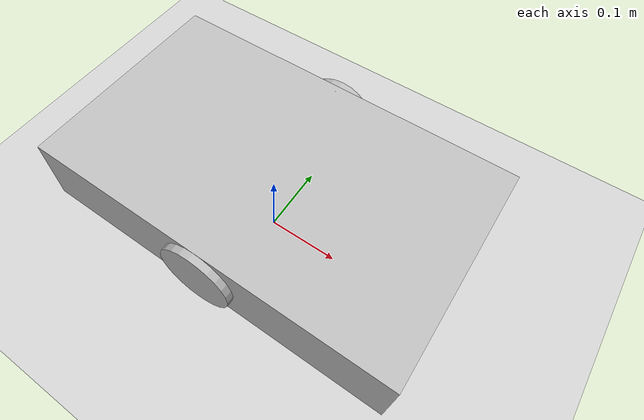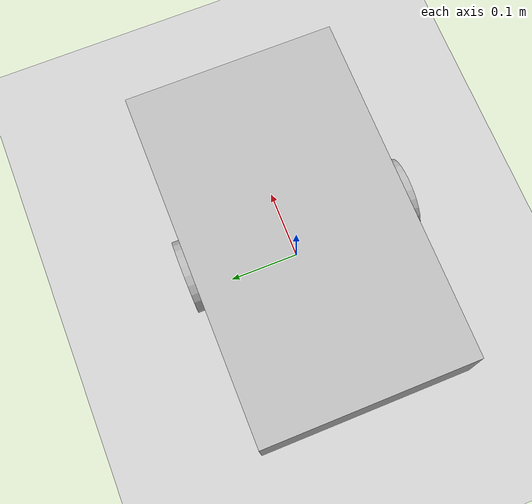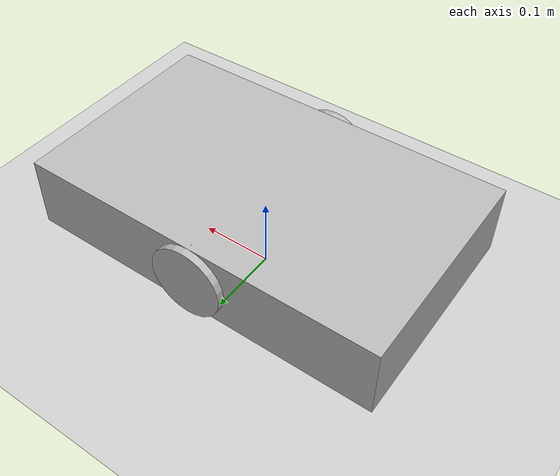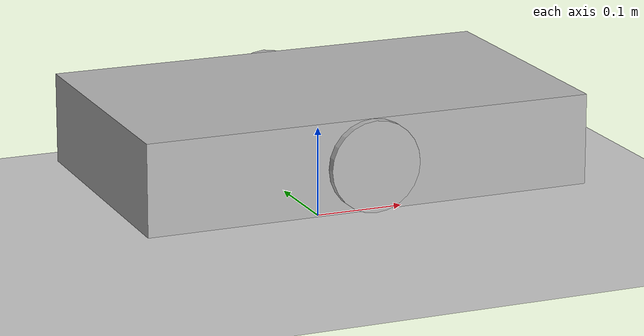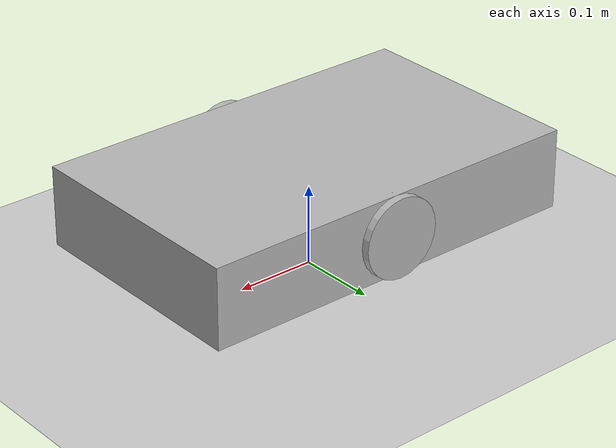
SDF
<?xml version="1.0" ?>
<sdf version="1.7">
  <world name="default">

    <physics name="1ms" type="ignored">
      <max_step_size>0.001</max_step_size>
      <real_time_factor>1.0</real_time_factor>
    </physics>

    <!-- LIGHT -->
    <light name="sun" type="directional">
      <direction>-0.5 0.5 -1</direction>
    </light>

    <!-- GROUND -->
    <model name="ground_plane">
      <static>true</static>
      <link name="link">
        <collision name="collision">
          <geometry>
            <plane>
              <normal>0 0 1</normal>
              <size>50 50</size>
            </plane>
          </geometry>
        </collision>
        <visual name="visual">
          <geometry>
            <plane>
              <normal>0 0 1</normal>
              <size>50 50</size>
            </plane>
          </geometry>
        </visual>
      </link>
    </model>

    <!-- ROBOT -->
    <model name="robot">
      <pose>0 0 0.1 0 0 0</pose>

      <!-- BASE -->
      <link name="base_link">
        <inertial><mass>5.0</mass></inertial>
        <collision name="collision">
          <geometry>
            <box>
              <size>0.5 0.3 0.1</size>
            </box>
          </geometry>
        </collision>
        <visual name="visual">
          <geometry>
            <box>
              <size>0.5 0.3 0.1</size>
            </box>
          </geometry>
        </visual>
      </link>

      <!-- LEFT WHEEL -->
      <link name="left_wheel">
        <pose>0 0.15 0 1.57 0 0</pose>
        <inertial><mass>1.0</mass></inertial>

        <collision name="collision">
          <geometry>
            <cylinder>
              <radius>0.05</radius>
              <length>0.02</length>
            </cylinder>
          </geometry>
          <surface>
            <friction>
              <ode>
                <mu>5</mu>
                <mu2>5</mu2>
              </ode>
            </friction>
          </surface>
        </collision>

        <visual name="visual">
          <geometry>
            <cylinder>
              <radius>0.05</radius>
              <length>0.02</length>
            </cylinder>
          </geometry>
        </visual>
      </link>

      <!-- RIGHT WHEEL -->
      <link name="right_wheel">
        <pose>0 -0.15 0 1.57 0 0</pose>
        <inertial><mass>1.0</mass></inertial>

        <collision name="collision">
          <geometry>
            <cylinder>
              <radius>0.05</radius>
              <length>0.02</length>
            </cylinder>
          </geometry>
          <surface>
            <friction>
              <ode>
                <mu>5</mu>
                <mu2>5</mu2>
              </ode>
            </friction>
          </surface>
        </collision>

        <visual name="visual">
          <geometry>
            <cylinder>
              <radius>0.05</radius>
              <length>0.02</length>
            </cylinder>
          </geometry>
        </visual>
      </link>

      <!-- JOINTS -->
      <joint name="left_wheel_joint" type="revolute">
        <parent>base_link</parent>
        <child>left_wheel</child>
        <axis>
          <xyz>0 1 0</xyz>
          <limit>
            <velocity>100</velocity>
          </limit>
        </axis>
      </joint>

      <joint name="right_wheel_joint" type="revolute">
        <parent>base_link</parent>
        <child>right_wheel</child>
        <axis>
          <xyz>0 1 0</xyz>
          <limit>
            <velocity>100</velocity>
          </limit>
        </axis>
      </joint>

      <!-- DIFF DRIVE -->
      <plugin
        filename="gz-sim-diff-drive-system"
        name="gz::sim::systems::DiffDrive">

        <left_joint>left_wheel_joint</left_joint>
        <right_joint>right_wheel_joint</right_joint>

        <wheel_separation>0.3</wheel_separation>
        <wheel_radius>0.05</wheel_radius>

        <topic>cmd_vel</topic>

      </plugin>

    </model>

  </world>
</sdf>
